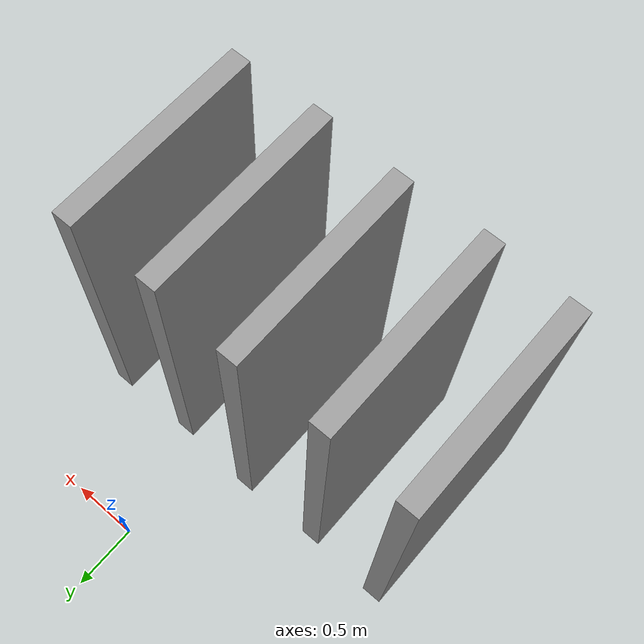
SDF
<?xml version='1.0'?>
<sdf version='1.6'>
  <model name='Map9'>
    <pose frame=''>-0.385 -1.585 0 0 -0 0</pose>
    <link name='Wall_0'>
      <collision name='Wall_0_Collision'>
        <geometry>
          <box>
            <size>1.5 0.15 2.5</size>
          </box>
        </geometry>
        <pose frame=''>0 0 1.25 0 -0 0</pose>
      </collision>
      <visual name='Wall_0_Visual'>
        <pose frame=''>0 0 1.25 0 -0 0</pose>
        <geometry>
          <box>
            <size>1.5 0.15 2.5</size>
          </box>
        </geometry>
        <material>
          <script>
            <uri>file://media/materials/scripts/gazebo.material</uri>
            <name>Gazebo/Grey</name>
          </script>
          <ambient>1 1 1 1</ambient>
        </material>
      </visual>
      <pose frame=''>-1.245 0.02 0 0 -0 1.5708</pose>
    </link>
    <link name='Wall_2'>
      <collision name='Wall_2_Collision'>
        <geometry>
          <box>
            <size>1.5 0.15 2.5</size>
          </box>
        </geometry>
        <pose frame=''>0 0 1.25 0 -0 0</pose>
      </collision>
      <visual name='Wall_2_Visual'>
        <pose frame=''>0 0 1.25 0 -0 0</pose>
        <geometry>
          <box>
            <size>1.5 0.15 2.5</size>
          </box>
        </geometry>
        <material>
          <script>
            <uri>file://media/materials/scripts/gazebo.material</uri>
            <name>Gazebo/Grey</name>
          </script>
          <ambient>1 1 1 1</ambient>
        </material>
      </visual>
      <pose frame=''>-0.645 -0.01 0 0 0 -1.5708</pose>
    </link>
    <link name='Wall_4'>
      <collision name='Wall_4_Collision'>
        <geometry>
          <box>
            <size>1.5 0.15 2.5</size>
          </box>
        </geometry>
        <pose frame=''>0 0 1.25 0 -0 0</pose>
      </collision>
      <visual name='Wall_4_Visual'>
        <pose frame=''>0 0 1.25 0 -0 0</pose>
        <geometry>
          <box>
            <size>1.5 0.15 2.5</size>
          </box>
        </geometry>
        <material>
          <script>
            <uri>file://media/materials/scripts/gazebo.material</uri>
            <name>Gazebo/Grey</name>
          </script>
          <ambient>1 1 1 1</ambient>
        </material>
      </visual>
      <pose frame=''>-0.015 0.01 0 0 0 -1.5708</pose>
    </link>
    <link name='Wall_6'>
      <collision name='Wall_6_Collision'>
        <geometry>
          <box>
            <size>1.5 0.15 2.5</size>
          </box>
        </geometry>
        <pose frame=''>0 0 1.25 0 -0 0</pose>
      </collision>
      <visual name='Wall_6_Visual'>
        <pose frame=''>0 0 1.25 0 -0 0</pose>
        <geometry>
          <box>
            <size>1.5 0.15 2.5</size>
          </box>
        </geometry>
        <material>
          <script>
            <uri>file://media/materials/scripts/gazebo.material</uri>
            <name>Gazebo/Grey</name>
          </script>
          <ambient>1 1 1 1</ambient>
        </material>
      </visual>
      <pose frame=''>0.615 -0.02 0 0 0 -1.5708</pose>
    </link>
    <link name='Wall_8'>
      <collision name='Wall_8_Collision'>
        <geometry>
          <box>
            <size>1.5 0.15 2.5</size>
          </box>
        </geometry>
        <pose frame=''>0 0 1.25 0 -0 0</pose>
      </collision>
      <visual name='Wall_8_Visual'>
        <pose frame=''>0 0 1.25 0 -0 0</pose>
        <geometry>
          <box>
            <size>1.5 0.15 2.5</size>
          </box>
        </geometry>
        <material>
          <script>
            <uri>file://media/materials/scripts/gazebo.material</uri>
            <name>Gazebo/Grey</name>
          </script>
          <ambient>1 1 1 1</ambient>
        </material>
      </visual>
      <pose frame=''>1.245 0 0 0 0 -1.5708</pose>
    </link>
    <static>1</static>
  </model>
</sdf>
